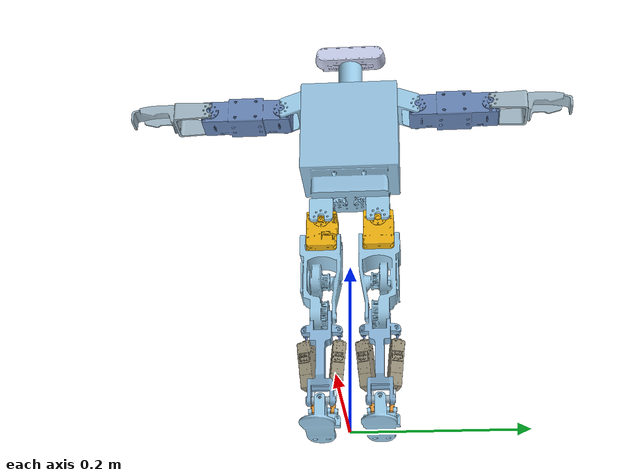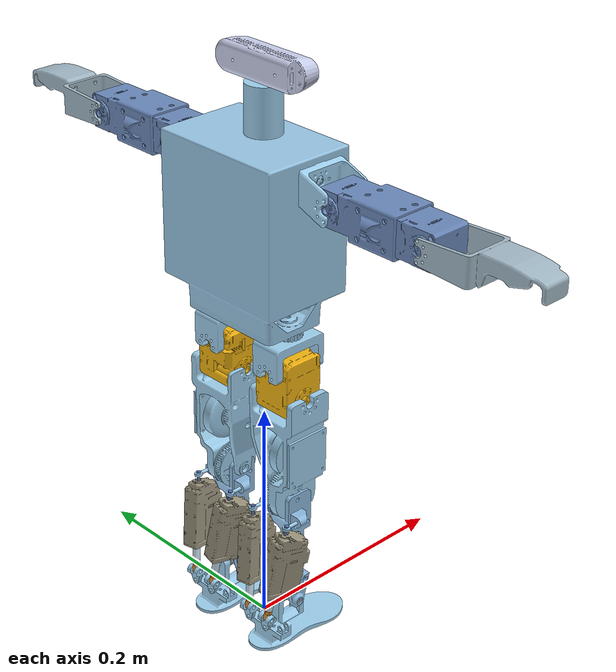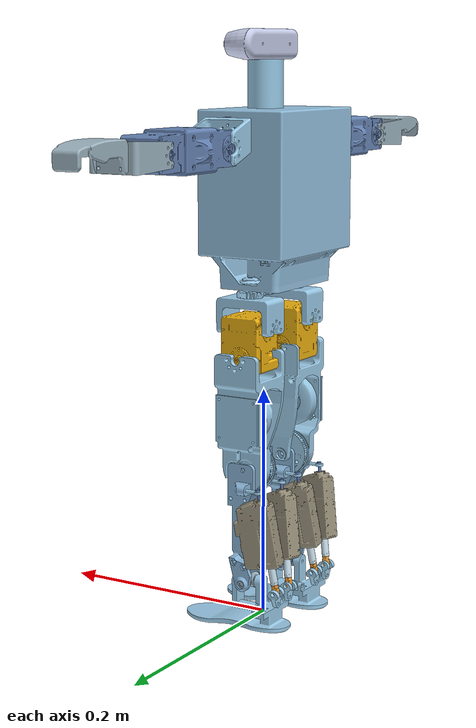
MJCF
<mujoco model="base">
  <compiler angle="radian" />
  <asset>
    <mesh name="body_link_visual" file="../assemblies/4R_body/meshes/body_link_visual.stl" />
    <mesh name="body_link_collision" file="collisions/body_link_collision.stl" />
    <mesh name="neck_link_visual" file="../assemblies/4R_body/meshes/neck_link_visual.stl" />
    <mesh name="neck_link_collision" file="collisions/neck_link_collision.stl" />
    <mesh name="head_link_visual" file="../assemblies/4R_body/meshes/head_link_visual.stl" />
    <mesh name="head_link_collision" file="collisions/head_link_collision.stl" />
    <mesh name="left_hip_yaw_link_visual" file="../assemblies/left_3R+RH5_leg/meshes/left_hip_yaw_link_visual.stl" />
    <mesh name="left_hip_roll_link_visual" file="../assemblies/left_3R+RH5_leg/meshes/left_hip_roll_link_visual.stl" />
    <mesh name="left_hip_roll_link_collision" file="collisions/left_hip_roll_link_collision.stl" />
    <mesh name="left_hip_pitch_link_visual" file="../assemblies/left_3R+RH5_leg/meshes/left_hip_pitch_link_visual.stl" />
    <mesh name="left_hip_pitch_link_collision" file="collisions/left_hip_pitch_link_collision.stl" />
    <mesh name="left_calf_link_visual" file="../assemblies/left_3R+RH5_leg/meshes/left_calf_link_visual.stl" />
    <mesh name="left_calf_link_collision" file="collisions/left_calf_link_collision.stl" />
    <mesh name="left_ank_pitch_link_visual" file="../assemblies/left_3R+RH5_leg/meshes/left_ank_pitch_link_visual.stl" />
    <mesh name="left_ank_roll_link_visual" file="../assemblies/left_3R+RH5_leg/meshes/left_ank_roll_link_visual.stl" />
    <mesh name="left_ank_roll_link_collision" file="collisions/left_ank_roll_link_collision.stl" />
    <mesh name="left_ank_rr_link_visual" file="../assemblies/left_3R+RH5_leg/meshes/left_ank_rr_link_visual.stl" />
    <mesh name="left_12lf_rod_end_visual" file="../assemblies/left_3R+RH5_leg/meshes/left_12lf_rod_end_visual.stl" />
    <mesh name="left_ank_rr_link_2_visual" file="../assemblies/left_3R+RH5_leg/meshes/left_ank_rr_link_2_visual.stl" />
    <mesh name="left_12lf_rod_end_2_visual" file="../assemblies/left_3R+RH5_leg/meshes/left_12lf_rod_end_2_visual.stl" />
    <mesh name="left_ball_joint_container_visual" file="../assemblies/left_3R+RH5_leg/meshes/left_ball_joint_container_visual.stl" />
    <mesh name="left_ball_joint_ball_visual" file="../assemblies/left_3R+RH5_leg/meshes/left_ball_joint_ball_visual.stl" />
    <mesh name="left_12lf_visual" file="../assemblies/left_3R+RH5_leg/meshes/left_12lf_visual.stl" />
    <mesh name="left_12lf_rod_visual" file="../assemblies/left_3R+RH5_leg/meshes/left_12lf_rod_visual.stl" />
    <mesh name="left_ball_joint_container_2_visual" file="../assemblies/left_3R+RH5_leg/meshes/left_ball_joint_container_2_visual.stl" />
    <mesh name="left_ball_joint_ball_2_visual" file="../assemblies/left_3R+RH5_leg/meshes/left_ball_joint_ball_2_visual.stl" />
    <mesh name="left_12lf_2_visual" file="../assemblies/left_3R+RH5_leg/meshes/left_12lf_2_visual.stl" />
    <mesh name="left_12lf_rod_2_visual" file="../assemblies/left_3R+RH5_leg/meshes/left_12lf_rod_2_visual.stl" />
    <mesh name="right_hip_yaw_link_visual" file="../assemblies/right_3R+RH5_leg/meshes/right_hip_yaw_link_visual.stl" />
    <mesh name="right_hip_roll_link_visual" file="../assemblies/right_3R+RH5_leg/meshes/right_hip_roll_link_visual.stl" />
    <mesh name="right_hip_roll_link_collision" file="collisions/right_hip_roll_link_collision.stl" />
    <mesh name="right_hip_pitch_link_visual" file="../assemblies/right_3R+RH5_leg/meshes/right_hip_pitch_link_visual.stl" />
    <mesh name="right_hip_pitch_link_collision" file="collisions/right_hip_pitch_link_collision.stl" />
    <mesh name="right_calf_link_visual" file="../assemblies/right_3R+RH5_leg/meshes/right_calf_link_visual.stl" />
    <mesh name="right_calf_link_collision" file="collisions/right_calf_link_collision.stl" />
    <mesh name="right_ank_pitch_link_visual" file="../assemblies/right_3R+RH5_leg/meshes/right_ank_pitch_link_visual.stl" />
    <mesh name="right_ank_roll_link_visual" file="../assemblies/right_3R+RH5_leg/meshes/right_ank_roll_link_visual.stl" />
    <mesh name="right_ank_roll_link_collision" file="collisions/right_ank_roll_link_collision.stl" />
    <mesh name="right_ank_rr_link_visual" file="../assemblies/right_3R+RH5_leg/meshes/right_ank_rr_link_visual.stl" />
    <mesh name="right_12lf_rod_end_visual" file="../assemblies/right_3R+RH5_leg/meshes/right_12lf_rod_end_visual.stl" />
    <mesh name="right_ank_rr_link_2_visual" file="../assemblies/right_3R+RH5_leg/meshes/right_ank_rr_link_2_visual.stl" />
    <mesh name="right_12lf_rod_end_2_visual" file="../assemblies/right_3R+RH5_leg/meshes/right_12lf_rod_end_2_visual.stl" />
    <mesh name="right_ball_joint_container_visual" file="../assemblies/right_3R+RH5_leg/meshes/right_ball_joint_container_visual.stl" />
    <mesh name="right_ball_joint_ball_visual" file="../assemblies/right_3R+RH5_leg/meshes/right_ball_joint_ball_visual.stl" />
    <mesh name="right_12lf_visual" file="../assemblies/right_3R+RH5_leg/meshes/right_12lf_visual.stl" />
    <mesh name="right_12lf_rod_visual" file="../assemblies/right_3R+RH5_leg/meshes/right_12lf_rod_visual.stl" />
    <mesh name="right_ball_joint_container_2_visual" file="../assemblies/right_3R+RH5_leg/meshes/right_ball_joint_container_2_visual.stl" />
    <mesh name="right_ball_joint_ball_2_visual" file="../assemblies/right_3R+RH5_leg/meshes/right_ball_joint_ball_2_visual.stl" />
    <mesh name="right_12lf_2_visual" file="../assemblies/right_3R+RH5_leg/meshes/right_12lf_2_visual.stl" />
    <mesh name="right_12lf_rod_2_visual" file="../assemblies/right_3R+RH5_leg/meshes/right_12lf_rod_2_visual.stl" />
    <mesh name="left_sho_pitch_link_visual" file="../assemblies/left_OP3_arm/meshes/left_sho_pitch_link_visual.stl" />
    <mesh name="left_sho_roll_link_visual" file="../assemblies/left_OP3_arm/meshes/left_sho_roll_link_visual.stl" />
    <mesh name="left_sho_roll_link_collision" file="collisions/left_sho_roll_link_collision.stl" />
    <mesh name="left_elb_link_visual" file="../assemblies/left_OP3_arm/meshes/left_elb_link_visual.stl" />
    <mesh name="left_elb_link_collision" file="collisions/left_elb_link_collision.stl" />
    <mesh name="right_sho_pitch_link_visual" file="../assemblies/right_OP3_arm/meshes/right_sho_pitch_link_visual.stl" />
    <mesh name="right_sho_roll_link_visual" file="../assemblies/right_OP3_arm/meshes/right_sho_roll_link_visual.stl" />
    <mesh name="right_sho_roll_link_collision" file="collisions/right_sho_roll_link_collision.stl" />
    <mesh name="right_elb_link_visual" file="../assemblies/right_OP3_arm/meshes/right_elb_link_visual.stl" />
    <mesh name="right_elb_link_collision" file="collisions/right_elb_link_collision.stl" />
  </asset>
  <worldbody>
    <site name="torso" fromto="0.01 0 0.4 -0.01 0 0.4" type="cylinder" size="0.005 0.005 1" group="3" />
    <geom rgba="0.592402 0.774937 0.896752 1" mesh="body_link_visual" class="visual" />
    <geom rgba="0.592402 0.774937 0.896752 1" mesh="body_link_collision" class="collision" />
    <geom pos="-0.0009 0 0.4408" quat="0 -0.707107 -0.707107 0" rgba="0.615686 0.811765 0.929412 1" mesh="neck_link_visual" class="visual" />
    <geom pos="-0.0009 0 0.4408" quat="0 -0.707107 -0.707107 0" rgba="0.615686 0.811765 0.929412 1" mesh="neck_link_collision" class="collision" />
    <geom pos="-0.0009 0 0.4808" quat="0 -0.707107 -0.707107 0" rgba="0.796078 0.823529 0.937255 1" mesh="head_link_visual" class="visual" />
    <geom pos="-0.0009 0 0.4808" quat="0 -0.707107 -0.707107 0" rgba="0.796078 0.823529 0.937255 1" mesh="head_link_collision" class="collision" />
    <body name="hip_yaw_link" pos="-0.0064 0.034 0.2855" quat="1 0 0 0">
      <inertial pos="0 0 -0.00983905" quat="0 0.707107 0 0.707107" mass="0.00902588" diaginertia="3.87214e-06 3.84085e-06 1.32305e-06" />
      <joint name="left_hip_yaw" pos="0 0 0" axis="0 0 1" range="-1.5708 1.5708" damping="1.084" armature="0.045" />
      <geom rgba="0.615686 0.811765 0.929412 1" mesh="left_hip_yaw_link_visual" class="visual" />
      <body name="hip_roll_link" pos="0.019 0 -0.026" quat="0 -0.707107 0 -0.707107">
        <inertial pos="-0.0120002 -0.000495888 -0.018504" quat="0.654458 0.267712 0.652088 0.27349" mass="0.0980124" diaginertia="2.78674e-05 2.68492e-05 2.02212e-05" />
        <joint name="left_hip_roll" pos="0 0 0" axis="0 0 1" range="-1.5708 1.5708" damping="1.084" armature="0.045" />
        <geom rgba="0.950187 0.706789 0.0616121 1" mesh="left_hip_roll_link_visual" class="visual" />
        <geom rgba="0.950187 0.706789 0.0616121 1" mesh="left_hip_roll_link_collision" class="collision" />
        <body name="left_hip_pitch_link" pos="-0.024 -0.019 -0.019" quat="0.5 -0.5 0.5 0.5">
          <inertial pos="-0.000216322 0.0529867 0.0147881" quat="0.675246 0.698079 0.174756 -0.161829" mass="0.0940846" diaginertia="6.31906e-05 6.27828e-05 2.1698e-05" />
          <joint name="left_hip_pitch" pos="0 0 0" axis="0 0 1" range="-1.5708 1.5708" damping="1.084" armature="0.045" />
          <geom rgba="0.616536 0.807302 0.921761 1" mesh="left_hip_pitch_link_visual" class="visual" />
          <geom rgba="0.616536 0.807302 0.921761 1" mesh="left_hip_pitch_link_collision" class="collision" />
          <body name="left_calf_link" pos="0 0.096 0.0274" quat="0 -1 0 0">
            <inertial pos="-0.00391362 -0.04364 0.00818493" quat="0.707645 0.706509 -0.0088213 -0.00239695" mass="0.0162906" diaginertia="1.55474e-05 1.48072e-05 1.93298e-06" />
            <joint name="left_knee" pos="0 0 0" axis="0 0 1" range="-1.5708 2.26893" damping="1.084" armature="0.045" />
            <geom rgba="0.553972 0.731614 0.877157 1" mesh="left_calf_link_visual" class="visual" />
            <geom rgba="0.553972 0.731614 0.877157 1" mesh="left_calf_link_collision" class="collision" />
            <body name="ank_pitch_link" pos="0 -0.1 -0.0062" quat="0 0.707107 -0.707107 0">
              <inertial pos="4.02697e-08 0.000595283 -0.0145999" quat="1 0 -2.35914e-06 0" mass="0.00422384" diaginertia="4.37053e-07 3.97827e-07 8.88586e-08" />
              <joint name="left_ank_pitch" pos="0 0 0" axis="0 0 1" range="-1.5708 1.5708" damping="1.084" armature="0.045" />
              <geom rgba="0.631892 0.726687 0.783564 1" mesh="left_ank_pitch_link_visual" class="visual" />
              <body name="ank_roll_link" pos="0 0.0015 -0.0146" quat="0.5 -0.5 -0.5 -0.5">
                <inertial pos="-6.36615e-10 0.0272401 -0.00561699" quat="0.99781 -0.0661477 0 0" mass="0.0138445" diaginertia="1.01509e-05 8.76769e-06 2.79508e-06" />
                <joint name="left_ank_roll" pos="0 0 0" axis="0 0 1" range="-1.5708 1.5708" damping="1.084" armature="0.045" />
                <geom rgba="0.615686 0.811765 0.929412 1" mesh="left_ank_roll_link_visual" class="visual" />
                <geom rgba="0.615686 0.811765 0.929412 1" mesh="left_ank_roll_link_collision" class="collision" />
                <body name="ank_rr_link" pos="-0.01 0.0125 -0.0336" quat="0.998721 0 0 -0.0505586">
                  <inertial pos="3.45935e-05 -0.00629994 0" quat="0.479847 0.519372 -0.479847 0.519372" mass="0.000442898" diaginertia="1.3107e-08 9.09397e-09 8.37402e-09" />
                  <joint name="left_ank_R11" pos="0 0 0" axis="0 0 1" range="-1.5708 1.5708" />
                  <geom rgba="0.615686 0.811765 0.929412 1" mesh="left_ank_rr_link_visual" class="visual" />
                  <body name="12lf_rod_end" pos="0 -0.01 0" quat="0.70532 -0.0502423 -0.70532 0.0502423">
                    <inertial pos="-4.47352e-11 -0.00384222 6.43842e-06" quat="0.500199 0.499801 -0.499801 0.500199" mass="0.000854205" diaginertia="1.27035e-08 1.1841e-08 3.35496e-09" />
                    <joint name="left_ank_R21" pos="0 0 0" axis="0 0 1" range="-1.5708 1.5708" />
                    <geom rgba="0.927718 0.610493 0.218477 1" mesh="left_12lf_rod_end_visual" class="visual" />
                  </body>
                </body>
                <body name="ank_rr_link_2" pos="0.01 0.0125 -0.0336" quat="0 0.0504983 -0.998724 0">
                  <inertial pos="3.45935e-05 -0.00629994 0" quat="0.479847 0.519372 -0.479847 0.519372" mass="0.000442898" diaginertia="1.3107e-08 9.09397e-09 8.37402e-09" />
                  <joint name="left_ank_R12" pos="0 0 0" axis="0 0 1" range="-1.5708 1.5708" />
                  <geom rgba="0.615686 0.811765 0.929412 1" mesh="left_ank_rr_link_2_visual" class="visual" />
                  <body name="12lf_rod_end_2" pos="0 -0.01 0" quat="0.705319 0.0502506 -0.705319 -0.0502506">
                    <inertial pos="-4.47352e-11 -0.00384222 6.43842e-06" quat="0.500199 0.499801 -0.499801 0.500199" mass="0.000854205" diaginertia="1.27035e-08 1.1841e-08 3.35496e-09" />
                    <joint name="left_ank_R22" pos="0 0 0" axis="0 0 1" range="-1.5708 1.5708" />
                    <geom rgba="0.927718 0.610493 0.218477 1" mesh="left_12lf_rod_end_2_visual" class="visual" />
                  </body>
                </body>
              </body>
            </body>
            <body name="ball_joint_container" pos="0.008 -0.015 0.0283" quat="0.0357503 -0.706202 -0.0357503 0.706202">
              <inertial pos="0 0 -0.00971253" quat="0.707107 0 0 0.707107" mass="4.80374e-05" diaginertia="8.47542e-10 7.18655e-10 1.86253e-10" />
              <joint name="left_ank_B11" pos="0 0 0" axis="0 0 1" range="-0.785398 0.785398" />
              <geom rgba="0.615686 0.811765 0.929412 1" mesh="left_ball_joint_container_visual" class="visual" />
              <body name="ball_joint_ball" pos="0 0 -0.0115" quat="0.0502423 0.70532 0.0502423 0.70532">
                <inertial pos="0 -0.00103087 0" quat="0.707107 0.707107 0 0" mass="4.40538e-05" diaginertia="3.1285e-10 3.12853e-10 6.25696e-11" />
                <joint name="left_ank_B21" pos="0 0 0" axis="0 0 1" range="-0.785398 0.785398" />
                <geom rgba="0.32913 0.443105 0.692049 1" mesh="left_ball_joint_ball_visual" class="visual" />
                <body name="12lf" pos="0 -0.00643875 0" quat="0.70458 -0.70458 0.0597268 0.0597268">
                  <inertial pos="0.00490842 -0.000138024 -0.029947" quat="0.709913 0.00132323 0.0043477 0.704274" mass="0.0447822" diaginertia="1.81889e-05 1.52606e-05 5.14874e-06" />
                  <joint name="left_ank_B31" pos="0 0 0" axis="0 0 1" range="-0.785398 0.785398" />
                  <geom rgba="0.620044 0.588367 0.498971 1" mesh="left_12lf_visual" class="visual" />
                  <body name="12lf_rod" pos="2.27221e-06 0 -0.07266" quat="0 -0.452653 0.891687 0">
                    <inertial pos="-6.32221e-07 4.69333e-07 -0.0128934" quat="1 -2.00488e-05 -2.69482e-05 -5.4028e-10" mass="0.00250883" diaginertia="2.69445e-07 2.69445e-07 1.78098e-08" />
                    <joint name="left_ank_act1" pos="0 0 0" axis="0 0 1" type="slide" range="0 0.04" />
                    <geom rgba="0.802503 0.893406 0.944918 1" mesh="left_12lf_rod_visual" class="visual" />
                  </body>
                </body>
              </body>
            </body>
            <body name="ball_joint_container_2" pos="0.008 -0.015 -0.0115" quat="0.706205 -0.0357077 -0.706205 0.0357077">
              <inertial pos="0 0 -0.00971253" quat="0.707107 0 0 0.707107" mass="4.80374e-05" diaginertia="8.47542e-10 7.18655e-10 1.86253e-10" />
              <joint name="left_ank_B12" pos="0 0 0" axis="0 0 1" range="-0.785398 0.785398" />
              <geom rgba="0.615686 0.811765 0.929412 1" mesh="left_ball_joint_container_2_visual" class="visual" />
              <body name="ball_joint_ball_2" pos="0 0 -0.0115" quat="0.705319 0.0502506 -0.705319 -0.0502506">
                <inertial pos="0 -0.00103087 0" quat="0.707107 0.707107 0 0" mass="4.40538e-05" diaginertia="3.1285e-10 3.12853e-10 6.25696e-11" />
                <joint name="left_ank_B22" pos="0 0 0" axis="0 0 1" range="-0.785398 0.785398" />
                <geom rgba="0.32913 0.443105 0.692049 1" mesh="left_ball_joint_ball_2_visual" class="visual" />
                <body name="12lf_2" pos="0 -0.00643875 0" quat="0.704247 -0.704247 -0.0635296 -0.0635296">
                  <inertial pos="0.00490842 -0.000138024 -0.029947" quat="0.709913 0.00132323 0.0043477 0.704274" mass="0.0447822" diaginertia="1.81889e-05 1.52606e-05 5.14874e-06" />
                  <joint name="left_ank_B32" pos="0 0 0" axis="0 0 1" range="-0.785398 0.785398" />
                  <geom rgba="0.620044 0.588367 0.498971 1" mesh="left_12lf_2_visual" class="visual" />
                  <body name="12lf_rod_2" pos="2.27221e-06 0 -0.07266" quat="0 -0.452653 0.891687 0">
                    <inertial pos="-6.32221e-07 4.69333e-07 -0.0128934" quat="1 -2.00488e-05 -2.69482e-05 -5.4028e-10" mass="0.00250883" diaginertia="2.69445e-07 2.69445e-07 1.78098e-08" />
                    <joint name="left_ank_act2" pos="0 0 0" axis="0 0 1" type="slide" range="0 0.04" />
                    <geom rgba="0.802503 0.893406 0.944918 1" mesh="left_12lf_rod_2_visual" class="visual" />
                  </body>
                </body>
              </body>
            </body>
          </body>
        </body>
      </body>
    </body>
    <body name="hip_yaw_link_2" pos="-0.0064 -0.034 0.2855" quat="1 0 0 0">
      <inertial pos="0 0 -0.00983905" quat="0 0.707107 0 0.707107" mass="0.00902588" diaginertia="3.87214e-06 3.84085e-06 1.32305e-06" />
      <joint name="right_hip_yaw" pos="0 0 0" axis="0 0 1" range="-1.5708 1.5708" damping="1.084" armature="0.045" />
      <geom rgba="0.615686 0.811765 0.929412 1" mesh="right_hip_yaw_link_visual" class="visual" />
      <body name="hip_roll_link_2" pos="-0.019 0 -0.026" quat="0.707107 0 -0.707107 0">
        <inertial pos="-0.0120002 -0.000495888 -0.018504" quat="0.654458 0.267712 0.652088 0.27349" mass="0.0980124" diaginertia="2.78674e-05 2.68492e-05 2.02212e-05" />
        <joint name="right_hip_roll" pos="0 0 0" axis="0 0 1" range="-1.5708 1.5708" damping="1.084" armature="0.045" />
        <geom rgba="0.950187 0.706789 0.0616121 1" mesh="right_hip_roll_link_visual" class="visual" />
        <geom rgba="0.950187 0.706789 0.0616121 1" mesh="right_hip_roll_link_collision" class="collision" />
        <body name="right_hip_pitch_link" pos="-0.024 -0.019 -0.019" quat="0.5 -0.5 0.5 0.5">
          <inertial pos="-1.47413e-05 0.0529867 0.0147881" quat="0.694289 0.719612 0.00585228 -0.00935198" mass="0.0940846" diaginertia="6.31005e-05 6.28744e-05 2.17054e-05" />
          <joint name="right_hip_pitch" pos="0 0 0" axis="0 0 1" range="-1.5708 1.5708" damping="1.084" armature="0.045" />
          <geom rgba="0.616536 0.807302 0.921761 1" mesh="right_hip_pitch_link_visual" class="visual" />
          <geom rgba="0.616536 0.807302 0.921761 1" mesh="right_hip_pitch_link_collision" class="collision" />
          <body name="right_calf_link" pos="0 0.096 0.0274" quat="0 0 -1 0">
            <inertial pos="-0.0039136 0.04364 0.0081849" quat="0.706509 0.707645 0.00239487 0.00882362" mass="0.0162906" diaginertia="1.55475e-05 1.48072e-05 1.933e-06" />
            <joint name="right_knee" pos="0 0 0" axis="0 0 1" range="-1.5708 1.5708" damping="1.084" armature="0.045" />
            <geom rgba="0.553972 0.731614 0.877157 1" mesh="right_calf_link_visual" class="visual" />
            <geom rgba="0.553972 0.731614 0.877157 1" mesh="right_calf_link_collision" class="collision" />
            <body name="ank_pitch_link_2" pos="0 0.1 -0.0062" quat="0 -0.707107 0.707107 0">
              <inertial pos="4.02697e-08 0.000595283 -0.0145999" quat="1 0 -2.35914e-06 0" mass="0.00422384" diaginertia="4.37053e-07 3.97827e-07 8.88586e-08" />
              <joint name="right_ank_pitch" pos="0 0 0" axis="0 0 1" range="-1.5708 1.5708" damping="1.084" armature="0.045" />
              <geom rgba="0.631892 0.726687 0.783564 1" mesh="right_ank_pitch_link_visual" class="visual" />
              <body name="ank_roll_link_2" pos="0 0.0015 -0.0146" quat="0.5 -0.5 0.5 0.5">
                <inertial pos="-6.36615e-10 0.0272401 -0.00561699" quat="0.99781 -0.0661477 0 0" mass="0.0138445" diaginertia="1.01509e-05 8.76769e-06 2.79508e-06" />
                <joint name="right_ank_roll" pos="0 0 0" axis="0 0 1" range="-1.5708 1.5708" damping="1.084" armature="0.045" />
                <geom rgba="0.615686 0.811765 0.929412 1" mesh="right_ank_roll_link_visual" class="visual" />
                <geom rgba="0.615686 0.811765 0.929412 1" mesh="right_ank_roll_link_collision" class="collision" />
                <body name="ank_rr_link_3" pos="-0.01 0.0125 -0.0336" quat="0.998721 0 0 -0.0505586">
                  <inertial pos="3.45935e-05 -0.00629994 0" quat="0.479847 0.519372 -0.479847 0.519372" mass="0.000442898" diaginertia="1.3107e-08 9.09397e-09 8.37402e-09" />
                  <joint name="right_ank_R11" pos="0 0 0" axis="0 0 1" range="-1.5708 1.5708" />
                  <geom rgba="0.615686 0.811765 0.929412 1" mesh="right_ank_rr_link_visual" class="visual" />
                  <body name="12lf_rod_end_3" pos="0 -0.01 0" quat="0.70532 -0.0502423 -0.70532 0.0502423">
                    <inertial pos="-4.47352e-11 -0.00384222 6.43842e-06" quat="0.500199 0.499801 -0.499801 0.500199" mass="0.000854205" diaginertia="1.27035e-08 1.1841e-08 3.35496e-09" />
                    <joint name="right_ank_R21" pos="0 0 0" axis="0 0 1" range="-1.5708 1.5708" />
                    <geom rgba="0.927718 0.610493 0.218477 1" mesh="right_12lf_rod_end_visual" class="visual" />
                  </body>
                </body>
                <body name="ank_rr_link_4" pos="0.01 0.0125 -0.0336" quat="0 -0.0504983 0.998724 0">
                  <inertial pos="3.45935e-05 -0.00629994 0" quat="0.479847 0.519372 -0.479847 0.519372" mass="0.000442898" diaginertia="1.3107e-08 9.09397e-09 8.37402e-09" />
                  <joint name="right_ank_R12" pos="0 0 0" axis="0 0 1" range="-1.5708 1.5708" />
                  <geom rgba="0.615686 0.811765 0.929412 1" mesh="right_ank_rr_link_2_visual" class="visual" />
                  <body name="12lf_rod_end_4" pos="0 -0.01 0" quat="0.705319 0.0502506 -0.705319 -0.0502506">
                    <inertial pos="-4.47352e-11 -0.00384222 6.43842e-06" quat="0.500199 0.499801 -0.499801 0.500199" mass="0.000854205" diaginertia="1.27035e-08 1.1841e-08 3.35496e-09" />
                    <joint name="right_ank_R22" pos="0 0 0" axis="0 0 1" range="-1.5708 1.5708" />
                    <geom rgba="0.927718 0.610493 0.218477 1" mesh="right_12lf_rod_end_2_visual" class="visual" />
                  </body>
                </body>
              </body>
            </body>
            <body name="ball_joint_container_3" pos="0.008 0.015 -0.0115" quat="0.706202 0.0357503 -0.706202 -0.0357503">
              <inertial pos="0 0 -0.00971253" quat="0.707107 0 0 0.707107" mass="4.80374e-05" diaginertia="8.47542e-10 7.18655e-10 1.86253e-10" />
              <joint name="right_ank_B11" pos="0 0 0" axis="0 0 1" range="-0.785398 0.785398" />
              <geom rgba="0.615686 0.811765 0.929412 1" mesh="right_ball_joint_container_visual" class="visual" />
              <body name="ball_joint_ball_3" pos="0 0 -0.0115" quat="0.0502423 0.70532 0.0502423 0.70532">
                <inertial pos="0 -0.00103087 0" quat="0.707107 0.707107 0 0" mass="4.40538e-05" diaginertia="3.1285e-10 3.12853e-10 6.25696e-11" />
                <joint name="right_ank_B21" pos="0 0 0" axis="0 0 1" range="-0.785398 0.785398" />
                <geom rgba="0.32913 0.443105 0.692049 1" mesh="right_ball_joint_ball_visual" class="visual" />
                <body name="12lf_3" pos="0 -0.00643875 0" quat="0.70458 -0.70458 0.0597268 0.0597268">
                  <inertial pos="0.00490842 -0.000138024 -0.029947" quat="0.709913 0.00132323 0.0043477 0.704274" mass="0.0447822" diaginertia="1.81889e-05 1.52606e-05 5.14874e-06" />
                  <joint name="right_ank_B31" pos="0 0 0" axis="0 0 1" range="-0.785398 0.785398" />
                  <geom rgba="0.620044 0.588367 0.498971 1" mesh="right_12lf_visual" class="visual" />
                  <body name="12lf_rod_3" pos="2.27221e-06 0 -0.07266" quat="0 -0.452653 0.891687 0">
                    <inertial pos="-6.32221e-07 4.69333e-07 -0.0128934" quat="1 -2.00488e-05 -2.69482e-05 -5.4028e-10" mass="0.00250883" diaginertia="2.69445e-07 2.69445e-07 1.78098e-08" />
                    <joint name="right_ank_act1" pos="0 0 0" axis="0 0 1" type="slide" range="0 0.04" />
                    <geom rgba="0.802503 0.893406 0.944918 1" mesh="right_12lf_rod_visual" class="visual" />
                  </body>
                </body>
              </body>
            </body>
            <body name="ball_joint_container_4" pos="0.008 0.015 0.0283" quat="0.706205 -0.0357077 -0.706205 0.0357077">
              <inertial pos="0 0 -0.00971253" quat="0.707107 0 0 0.707107" mass="4.80374e-05" diaginertia="8.47542e-10 7.18655e-10 1.86253e-10" />
              <joint name="right_ank_B12" pos="0 0 0" axis="0 0 1" range="-0.785398 0.785398" />
              <geom rgba="0.615686 0.811765 0.929412 1" mesh="right_ball_joint_container_2_visual" class="visual" />
              <body name="ball_joint_ball_4" pos="0 0 -0.0115" quat="0.0502506 0.705319 0.0502506 0.705319">
                <inertial pos="0 -0.00103087 0" quat="0.707107 0.707107 0 0" mass="4.40538e-05" diaginertia="3.1285e-10 3.12853e-10 6.25696e-11" />
                <joint name="right_ank_B22" pos="0 0 0" axis="0 0 1" range="-0.785398 0.785398" />
                <geom rgba="0.32913 0.443105 0.692049 1" mesh="right_ball_joint_ball_2_visual" class="visual" />
                <body name="12lf_4" pos="0 -0.00643875 0" quat="0.704247 -0.704247 -0.0635296 -0.0635296">
                  <inertial pos="0.00490842 -0.000138024 -0.029947" quat="0.709913 0.00132323 0.0043477 0.704274" mass="0.0447822" diaginertia="1.81889e-05 1.52606e-05 5.14874e-06" />
                  <joint name="right_ank_B32" pos="0 0 0" axis="0 0 1" range="-0.785398 0.785398" />
                  <geom rgba="0.620044 0.588367 0.498971 1" mesh="right_12lf_2_visual" class="visual" />
                  <body name="12lf_rod_4" pos="2.27221e-06 0 -0.07266" quat="0 -0.452653 0.891687 0">
                    <inertial pos="-6.32221e-07 4.69333e-07 -0.0128934" quat="1 -2.00488e-05 -2.69482e-05 -5.4028e-10" mass="0.00250883" diaginertia="2.69445e-07 2.69445e-07 1.78098e-08" />
                    <joint name="right_ank_act2" pos="0 0 0" axis="0 0 1" type="slide" range="0 0.04" />
                    <geom rgba="0.802503 0.893406 0.944918 1" mesh="right_12lf_rod_2_visual" class="visual" />
                  </body>
                </body>
              </body>
            </body>
          </body>
        </body>
      </body>
    </body>
    <body name="sho_pitch_link" pos="-0.0009 0.058 0.4208" quat="0 0 0.707107 -0.707107">
      <inertial pos="-3.04914e-09 0.00219805 -0.0084441" quat="0.200747 0.678012 0.200747 0.678012" mass="0.00531687" diaginertia="2.03088e-06 1.77604e-06 8.00424e-07" />
      <joint name="left_sho_pitch" pos="0 0 0" axis="0 0 1" range="-1.5708 1.5708" damping="1.084" armature="0.045" />
      <geom rgba="0.615686 0.811765 0.929412 1" mesh="left_sho_pitch_link_visual" class="visual" />
      <body name="sho_roll_link" pos="-0.019 0.009 -0.0275" quat="0.707107 0 -0.707107 0">
        <inertial pos="-0.04475 -2.23934e-09 -0.0187704" quat="0.500054 0.500053 0.499947 0.499946" mass="0.141047" diaginertia="0.000183032 0.000178031 2.57447e-05" />
        <joint name="left_sho_roll" pos="0 0 0" axis="0 0 1" range="-1.5708 1.5708" damping="1.084" armature="0.045" />
        <geom rgba="0.413169 0.53242 0.728285 1" mesh="left_sho_roll_link_visual" class="visual" />
        <geom rgba="0.413169 0.53242 0.728285 1" mesh="left_sho_roll_link_collision" class="collision" />
        <body name="elb_link" pos="-0.0895 0 0" quat="0 0.707107 -0.707107 0">
          <inertial pos="0.00358099 0.0516929 0.019" quat="0.705958 0.705958 -0.0402878 -0.0402878" mass="0.0121478" diaginertia="1.0371e-05 8.4465e-06 2.96256e-06" />
          <joint name="left_elb" pos="0 0 0" axis="0 0 1" range="-1.5708 1.5708" damping="1.084" armature="0.045" />
          <geom rgba="0.632763 0.72211 0.775718 1" mesh="left_elb_link_visual" class="visual" />
          <geom rgba="0.632763 0.72211 0.775718 1" mesh="left_elb_link_collision" class="collision" />
        </body>
      </body>
    </body>
    <body name="sho_pitch_link_2" pos="-0.0009 -0.058 0.4208" quat="0.707107 -0.707107 0 0">
      <inertial pos="-3.04914e-09 0.00219805 -0.0084441" quat="0.200747 0.678012 0.200747 0.678012" mass="0.00531687" diaginertia="2.03088e-06 1.77604e-06 8.00424e-07" />
      <joint name="right_sho_pitch" pos="0 0 0" axis="0 0 1" range="-1.5708 1.5708" damping="1.084" armature="0.045" />
      <geom rgba="0.615686 0.811765 0.929412 1" mesh="right_sho_pitch_link_visual" class="visual" />
      <body name="sho_roll_link_2" pos="0.019 0.009 -0.0275" quat="0 -0.707107 0 -0.707107">
        <inertial pos="-0.04475 -2.23934e-09 -0.0187704" quat="0.500054 0.500053 0.499947 0.499946" mass="0.141047" diaginertia="0.000183032 0.000178031 2.57447e-05" />
        <joint name="right_sho_roll" pos="0 0 0" axis="0 0 1" range="-1.5708 1.5708" damping="1.084" armature="0.045" />
        <geom rgba="0.413169 0.53242 0.728285 1" mesh="right_sho_roll_link_visual" class="visual" />
        <geom rgba="0.413169 0.53242 0.728285 1" mesh="right_sho_roll_link_collision" class="collision" />
        <body name="elb_link_2" pos="-0.0895 0 0" quat="0 -0.707107 -0.707107 0">
          <inertial pos="0.00358099 -0.0516929 0.019" quat="0.705958 0.705958 0.0402878 0.0402878" mass="0.0121478" diaginertia="1.0371e-05 8.4465e-06 2.96256e-06" />
          <joint name="right_elb" pos="0 0 0" axis="0 0 1" range="-1.5708 1.5708" damping="1.084" armature="0.045" />
          <geom rgba="0.632763 0.72211 0.775718 1" mesh="right_elb_link_visual" class="visual" />
          <geom rgba="0.632763 0.72211 0.775718 1" mesh="right_elb_link_collision" class="collision" />
        </body>
      </body>
    </body>
  </worldbody>
  <contact>
    <exclude body1="hip_roll_link" body2="left_hip_pitch_link" />
    <exclude body1="hip_roll_link" body2="left_calf_link" />
    <exclude body1="hip_roll_link" body2="ank_roll_link" />
    <exclude body1="left_hip_pitch_link" body2="left_calf_link" />
    <exclude body1="left_hip_pitch_link" body2="ank_roll_link" />
    <exclude body1="left_calf_link" body2="ank_roll_link" />
    <exclude body1="hip_roll_link_2" body2="right_hip_pitch_link" />
    <exclude body1="hip_roll_link_2" body2="right_calf_link" />
    <exclude body1="hip_roll_link_2" body2="ank_roll_link_2" />
    <exclude body1="right_hip_pitch_link" body2="right_calf_link" />
    <exclude body1="right_hip_pitch_link" body2="ank_roll_link_2" />
    <exclude body1="right_calf_link" body2="ank_roll_link_2" />
    <exclude body1="sho_roll_link" body2="elb_link" />
    <exclude body1="sho_roll_link_2" body2="elb_link_2" />
  </contact>
  <actuator>
    <position name="left_hip_yaw_act" joint="left_hip_yaw" kp="400.0" kv="40.0" ctrlrange="-1.5708 1.5708" />
    <position name="left_hip_roll_act" joint="left_hip_roll" kp="400.0" kv="40.0" ctrlrange="-1.5708 1.5708" />
    <position name="left_hip_pitch_act" joint="left_hip_pitch" kp="400.0" kv="40.0" ctrlrange="-1.5708 1.5708" />
    <position name="left_knee_act" joint="left_knee" kp="400.0" kv="40.0" ctrlrange="-1.5708 2.26893" />
    <position name="left_ank_pitch_act" joint="left_ank_pitch" kp="400.0" kv="40.0" ctrlrange="-1.5708 1.5708" />
    <position name="left_ank_roll_act" joint="left_ank_roll" kp="400.0" kv="40.0" ctrlrange="-1.5708 1.5708" />
    <position name="right_hip_yaw_act" joint="right_hip_yaw" kp="400.0" kv="40.0" ctrlrange="-1.5708 1.5708" />
    <position name="right_hip_roll_act" joint="right_hip_roll" kp="400.0" kv="40.0" ctrlrange="-1.5708 1.5708" />
    <position name="right_hip_pitch_act" joint="right_hip_pitch" kp="400.0" kv="40.0" ctrlrange="-1.5708 1.5708" />
    <position name="right_knee_act" joint="right_knee" kp="400.0" kv="40.0" ctrlrange="-1.5708 1.5708" />
    <position name="right_ank_pitch_act" joint="right_ank_pitch" kp="400.0" kv="40.0" ctrlrange="-1.5708 1.5708" />
    <position name="right_ank_roll_act" joint="right_ank_roll" kp="400.0" kv="40.0" ctrlrange="-1.5708 1.5708" />
    <position name="left_sho_pitch_act" joint="left_sho_pitch" kp="400.0" kv="40.0" ctrlrange="-1.5708 1.5708" />
    <position name="left_sho_roll_act" joint="left_sho_roll" kp="400.0" kv="40.0" ctrlrange="-1.5708 1.5708" />
    <position name="left_elb_act" joint="left_elb" kp="400.0" kv="40.0" ctrlrange="-1.5708 1.5708" />
    <position name="right_sho_pitch_act" joint="right_sho_pitch" kp="400.0" kv="40.0" ctrlrange="-1.5708 1.5708" />
    <position name="right_sho_roll_act" joint="right_sho_roll" kp="400.0" kv="40.0" ctrlrange="-1.5708 1.5708" />
    <position name="right_elb_act" joint="right_elb" kp="400.0" kv="40.0" ctrlrange="-1.5708 1.5708" />
  </actuator>
  <equality>
    <weld body1="12lf_rod_end" body2="12lf_rod" solimp="0.9999 0.9999 0.001 0.5 2" solref="0.0001 1" />
    <weld body1="12lf_rod_end_2" body2="12lf_rod_2" solimp="0.9999 0.9999 0.001 0.5 2" solref="0.0001 1" />
    <weld body1="12lf_rod_end_3" body2="12lf_rod_3" solimp="0.9999 0.9999 0.001 0.5 2" solref="0.0001 1" />
    <weld body1="12lf_rod_end_4" body2="12lf_rod_4" solimp="0.9999 0.9999 0.001 0.5 2" solref="0.0001 1" />
  </equality>
  <default>
    <joint frictionloss="0.03" />
    <position forcelimited="false" />
    <geom type="mesh" solref=".004 1" />
    <default class="visual">
      <geom contype="0" conaffinity="0" group="2" density="0" />
    </default>
    <default class="collision">
      <geom group="3" />
    </default>
  </default>
</mujoco>
